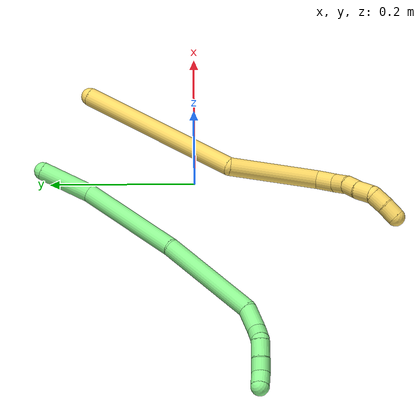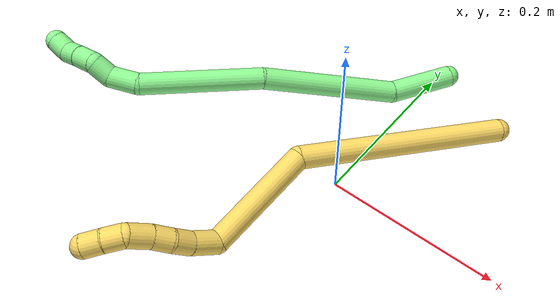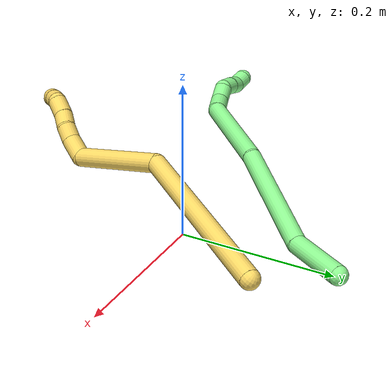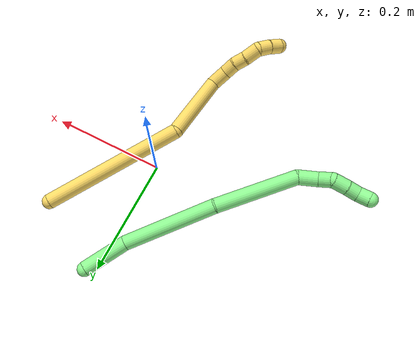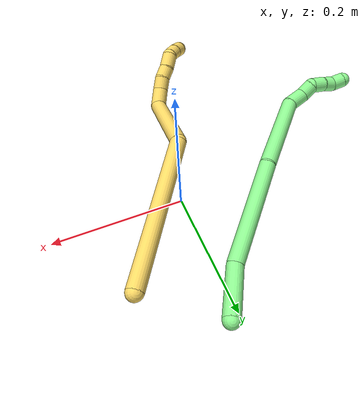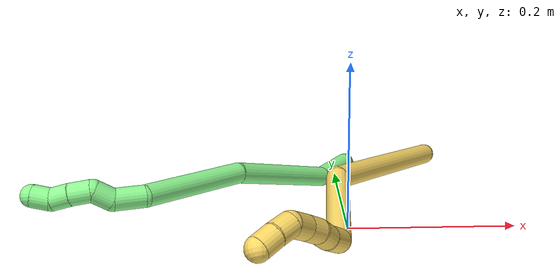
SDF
<sdf version="1.7">
 <world name="default">
  <model name="5">
   <static>0</static>
   <link name="5">
    <collision name="collision-cylinder-e_1_1_4">
     <pose>-0.06443 -0.095817 -0.022439 1.80084 -0.579678 -0.719556</pose>
     <geometry><cylinder><radius>0.0125</radius><length>0.23525</length></cylinder></geometry>
     <surface>
      <friction><ode><mu>1.16</mu><mu2>1.16</mu2><slip1>0</slip1><slip2>0</slip2></ode></friction>
      <contact><ode><kp>1e+06</kp><kd>1</kd><max_vel>0</max_vel><min_depth>0.001</min_depth></ode></contact>
     </surface>
    </collision>
    <visual name="visual-cylinder-e_1_1_4">
     <pose>-0.06443 -0.095817 -0.022439 1.80084 -0.579678 -0.719556</pose>
     <geometry><cylinder><radius>0.0125</radius><length>0.23525</length></cylinder></geometry>
     <material><ambient>1 0.858824 0.4 1</ambient></material>
    </visual>
    <collision name="collision-cylinder-e_2_4_5">
     <pose>-0.137033 -0.237979 -0.08465 2.28001 -0.133048 -0.287923</pose>
     <geometry><cylinder><radius>0.0125</radius><length>0.123231</length></cylinder></geometry>
     <surface>
      <friction><ode><mu>1.16</mu><mu2>1.16</mu2><slip1>0</slip1><slip2>0</slip2></ode></friction>
      <contact><ode><kp>1e+06</kp><kd>1</kd><max_vel>0</max_vel><min_depth>0.001</min_depth></ode></contact>
     </surface>
    </collision>
    <visual name="visual-cylinder-e_2_4_5">
     <pose>-0.137033 -0.237979 -0.08465 2.28001 -0.133048 -0.287923</pose>
     <geometry><cylinder><radius>0.0125</radius><length>0.123231</length></cylinder></geometry>
     <material><ambient>1 0.858824 0.4 1</ambient></material>
    </visual>
    <collision name="collision-cylinder-e_3_5_6">
     <pose>-0.150774 -0.298544 -0.123616 1.51426 -0.372625 -0.352566</pose>
     <geometry><cylinder><radius>0.0125</radius><length>0.030584</length></cylinder></geometry>
     <surface>
      <friction><ode><mu>1.16</mu><mu2>1.16</mu2><slip1>0</slip1><slip2>0</slip2></ode></friction>
      <contact><ode><kp>1e+06</kp><kd>1</kd><max_vel>0</max_vel><min_depth>0.001</min_depth></ode></contact>
     </surface>
    </collision>
    <visual name="visual-cylinder-e_3_5_6">
     <pose>-0.150774 -0.298544 -0.123616 1.51426 -0.372625 -0.352566</pose>
     <geometry><cylinder><radius>0.0125</radius><length>0.030584</length></cylinder></geometry>
     <material><ambient>1 0.858824 0.4 1</ambient></material>
    </visual>
    <collision name="collision-cylinder-e_4_6_7">
     <pose>-0.160149 -0.322586 -0.120317 1.32209 -0.359476 -0.280786</pose>
     <geometry><cylinder><radius>0.0125</radius><length>0.021653</length></cylinder></geometry>
     <surface>
      <friction><ode><mu>1.16</mu><mu2>1.16</mu2><slip1>0</slip1><slip2>0</slip2></ode></friction>
      <contact><ode><kp>1e+06</kp><kd>1</kd><max_vel>0</max_vel><min_depth>0.001</min_depth></ode></contact>
     </surface>
    </collision>
    <visual name="visual-cylinder-e_4_6_7">
     <pose>-0.160149 -0.322586 -0.120317 1.32209 -0.359476 -0.280786</pose>
     <geometry><cylinder><radius>0.0125</radius><length>0.021653</length></cylinder></geometry>
     <material><ambient>1 0.858824 0.4 1</ambient></material>
    </visual>
    <collision name="collision-cylinder-e_5_7_8">
     <pose>-0.169789 -0.34091 -0.115938 1.35261 -0.590043 -0.478444</pose>
     <geometry><cylinder><radius>0.0125</radius><length>0.02096</length></cylinder></geometry>
     <surface>
      <friction><ode><mu>1.16</mu><mu2>1.16</mu2><slip1>0</slip1><slip2>0</slip2></ode></friction>
      <contact><ode><kp>1e+06</kp><kd>1</kd><max_vel>0</max_vel><min_depth>0.001</min_depth></ode></contact>
     </surface>
    </collision>
    <visual name="visual-cylinder-e_5_7_8">
     <pose>-0.169789 -0.34091 -0.115938 1.35261 -0.590043 -0.478444</pose>
     <geometry><cylinder><radius>0.0125</radius><length>0.02096</length></cylinder></geometry>
     <material><ambient>1 0.858824 0.4 1</ambient></material>
    </visual>
    <collision name="collision-cylinder-e_6_8_9">
     <pose>-0.181556 -0.360934 -0.112975 1.4775 -0.473945 -0.433041</pose>
     <geometry><cylinder><radius>0.0125</radius><length>0.026013</length></cylinder></geometry>
     <surface>
      <friction><ode><mu>1.16</mu><mu2>1.16</mu2><slip1>0</slip1><slip2>0</slip2></ode></friction>
      <contact><ode><kp>1e+06</kp><kd>1</kd><max_vel>0</max_vel><min_depth>0.001</min_depth></ode></contact>
     </surface>
    </collision>
    <visual name="visual-cylinder-e_6_8_9">
     <pose>-0.181556 -0.360934 -0.112975 1.4775 -0.473945 -0.433041</pose>
     <geometry><cylinder><radius>0.0125</radius><length>0.026013</length></cylinder></geometry>
     <material><ambient>1 0.858824 0.4 1</ambient></material>
    </visual>
    <collision name="collision-cylinder-e_7_9_10">
     <pose>-0.195043 -0.378623 -0.116214 2.18163 -0.786971 -1.34635</pose>
     <geometry><cylinder><radius>0.0125</radius><length>0.021324</length></cylinder></geometry>
     <surface>
      <friction><ode><mu>1.16</mu><mu2>1.16</mu2><slip1>0</slip1><slip2>0</slip2></ode></friction>
      <contact><ode><kp>1e+06</kp><kd>1</kd><max_vel>0</max_vel><min_depth>0.001</min_depth></ode></contact>
     </surface>
    </collision>
    <visual name="visual-cylinder-e_7_9_10">
     <pose>-0.195043 -0.378623 -0.116214 2.18163 -0.786971 -1.34635</pose>
     <geometry><cylinder><radius>0.0125</radius><length>0.021324</length></cylinder></geometry>
     <material><ambient>1 0.858824 0.4 1</ambient></material>
    </visual>
    <collision name="collision-cylinder-e_8_10_2">
     <pose>-0.210353 -0.38985 -0.12546 2.34302 -0.832204 -1.61698</pose>
     <geometry><cylinder><radius>0.0125</radius><length>0.020986</length></cylinder></geometry>
     <surface>
      <friction><ode><mu>1.16</mu><mu2>1.16</mu2><slip1>0</slip1><slip2>0</slip2></ode></friction>
      <contact><ode><kp>1e+06</kp><kd>1</kd><max_vel>0</max_vel><min_depth>0.001</min_depth></ode></contact>
     </surface>
    </collision>
    <visual name="visual-cylinder-e_8_10_2">
     <pose>-0.210353 -0.38985 -0.12546 2.34302 -0.832204 -1.61698</pose>
     <geometry><cylinder><radius>0.0125</radius><length>0.020986</length></cylinder></geometry>
     <material><ambient>1 0.858824 0.4 1</ambient></material>
    </visual>
    <collision name="collision-sphere-2">
     <pose>-0.218112 -0.394911 -0.130389 0 -0 0</pose>
     <geometry><sphere><radius>0.0125</radius></sphere></geometry>
     <surface>
      <friction><ode><mu>1.16</mu><mu2>1.16</mu2><slip1>0</slip1><slip2>0</slip2></ode></friction>
      <contact><ode><kp>1e+06</kp><kd>1</kd><max_vel>0</max_vel><min_depth>0.001</min_depth></ode></contact>
     </surface>
    </collision>
    <visual name="visual-sphere-2">
     <pose>-0.218112 -0.394911 -0.130389 0 -0 0</pose>
     <geometry><sphere><radius>0.0125</radius></sphere></geometry>
     <material><ambient>1 0.858824 0.4 1</ambient></material>
    </visual>
    <collision name="collision-sphere-10">
     <pose>-0.202595 -0.384789 -0.120531 0 -0 0</pose>
     <geometry><sphere><radius>0.0125</radius></sphere></geometry>
     <surface>
      <friction><ode><mu>1.16</mu><mu2>1.16</mu2><slip1>0</slip1><slip2>0</slip2></ode></friction>
      <contact><ode><kp>1e+06</kp><kd>1</kd><max_vel>0</max_vel><min_depth>0.001</min_depth></ode></contact>
     </surface>
    </collision>
    <visual name="visual-sphere-10">
     <pose>-0.202595 -0.384789 -0.120531 0 -0 0</pose>
     <geometry><sphere><radius>0.0125</radius></sphere></geometry>
     <material><ambient>1 0.858824 0.4 1</ambient></material>
    </visual>
    <collision name="collision-sphere-9">
     <pose>-0.187492 -0.372457 -0.111897 0 -0 0</pose>
     <geometry><sphere><radius>0.0125</radius></sphere></geometry>
     <surface>
      <friction><ode><mu>1.16</mu><mu2>1.16</mu2><slip1>0</slip1><slip2>0</slip2></ode></friction>
      <contact><ode><kp>1e+06</kp><kd>1</kd><max_vel>0</max_vel><min_depth>0.001</min_depth></ode></contact>
     </surface>
    </collision>
    <visual name="visual-sphere-9">
     <pose>-0.187492 -0.372457 -0.111897 0 -0 0</pose>
     <geometry><sphere><radius>0.0125</radius></sphere></geometry>
     <material><ambient>1 0.858824 0.4 1</ambient></material>
    </visual>
    <collision name="collision-sphere-4">
     <pose>-0.128859 -0.191634 -0.044878 0 -0 0</pose>
     <geometry><sphere><radius>0.0125</radius></sphere></geometry>
     <surface>
      <friction><ode><mu>1.16</mu><mu2>1.16</mu2><slip1>0</slip1><slip2>0</slip2></ode></friction>
      <contact><ode><kp>1e+06</kp><kd>1</kd><max_vel>0</max_vel><min_depth>0.001</min_depth></ode></contact>
     </surface>
    </collision>
    <visual name="visual-sphere-4">
     <pose>-0.128859 -0.191634 -0.044878 0 -0 0</pose>
     <geometry><sphere><radius>0.0125</radius></sphere></geometry>
     <material><ambient>1 0.858824 0.4 1</ambient></material>
    </visual>
    <collision name="collision-sphere-1">
     <geometry><sphere><radius>0.0125</radius></sphere></geometry>
     <surface>
      <friction><ode><mu>1.16</mu><mu2>1.16</mu2><slip1>0</slip1><slip2>0</slip2></ode></friction>
      <contact><ode><kp>1e+06</kp><kd>1</kd><max_vel>0</max_vel><min_depth>0.001</min_depth></ode></contact>
     </surface>
    </collision>
    <visual name="visual-sphere-1">
     <geometry><sphere><radius>0.0125</radius></sphere></geometry>
     <material><ambient>1 0.858824 0.4 1</ambient></material>
    </visual>
    <collision name="collision-sphere-8">
     <pose>-0.17562 -0.349412 -0.114053 0 -0 0</pose>
     <geometry><sphere><radius>0.0125</radius></sphere></geometry>
     <surface>
      <friction><ode><mu>1.16</mu><mu2>1.16</mu2><slip1>0</slip1><slip2>0</slip2></ode></friction>
      <contact><ode><kp>1e+06</kp><kd>1</kd><max_vel>0</max_vel><min_depth>0.001</min_depth></ode></contact>
     </surface>
    </collision>
    <visual name="visual-sphere-8">
     <pose>-0.17562 -0.349412 -0.114053 0 -0 0</pose>
     <geometry><sphere><radius>0.0125</radius></sphere></geometry>
     <material><ambient>1 0.858824 0.4 1</ambient></material>
    </visual>
    <collision name="collision-sphere-5">
     <pose>-0.145206 -0.284324 -0.124421 0 -0 0</pose>
     <geometry><sphere><radius>0.0125</radius></sphere></geometry>
     <surface>
      <friction><ode><mu>1.16</mu><mu2>1.16</mu2><slip1>0</slip1><slip2>0</slip2></ode></friction>
      <contact><ode><kp>1e+06</kp><kd>1</kd><max_vel>0</max_vel><min_depth>0.001</min_depth></ode></contact>
     </surface>
    </collision>
    <visual name="visual-sphere-5">
     <pose>-0.145206 -0.284324 -0.124421 0 -0 0</pose>
     <geometry><sphere><radius>0.0125</radius></sphere></geometry>
     <material><ambient>1 0.858824 0.4 1</ambient></material>
    </visual>
    <collision name="collision-sphere-6">
     <pose>-0.156341 -0.312764 -0.122812 0 -0 0</pose>
     <geometry><sphere><radius>0.0125</radius></sphere></geometry>
     <surface>
      <friction><ode><mu>1.16</mu><mu2>1.16</mu2><slip1>0</slip1><slip2>0</slip2></ode></friction>
      <contact><ode><kp>1e+06</kp><kd>1</kd><max_vel>0</max_vel><min_depth>0.001</min_depth></ode></contact>
     </surface>
    </collision>
    <visual name="visual-sphere-6">
     <pose>-0.156341 -0.312764 -0.122812 0 -0 0</pose>
     <geometry><sphere><radius>0.0125</radius></sphere></geometry>
     <material><ambient>1 0.858824 0.4 1</ambient></material>
    </visual>
    <collision name="collision-sphere-7">
     <pose>-0.163958 -0.332409 -0.117823 0 -0 0</pose>
     <geometry><sphere><radius>0.0125</radius></sphere></geometry>
     <surface>
      <friction><ode><mu>1.16</mu><mu2>1.16</mu2><slip1>0</slip1><slip2>0</slip2></ode></friction>
      <contact><ode><kp>1e+06</kp><kd>1</kd><max_vel>0</max_vel><min_depth>0.001</min_depth></ode></contact>
     </surface>
    </collision>
    <visual name="visual-sphere-7">
     <pose>-0.163958 -0.332409 -0.117823 0 -0 0</pose>
     <geometry><sphere><radius>0.0125</radius></sphere></geometry>
     <material><ambient>1 0.858824 0.4 1</ambient></material>
    </visual>
    <inertial>
     <pose>-0.113956 -0.201545 -0.065152 0 -0 0</pose>
     <mass>0.5</mass>
     <inertia>
      <ixx>0.000178</ixx>
      <ixy>0</ixy>
      <ixz>0</ixz>
      <iyy>-0.000579</iyy>
      <iyz>0</iyz>
      <izz>0.001639</izz>
     </inertia>
    </inertial>
   </link>
   <pose>0.11486 0.144104 0.045723 -0.54005 -0.186723 0.029688</pose>
  </model>
  <model name="13">
   <static>0</static>
   <link name="13">
    <collision name="collision-cylinder-e_1_1_4">
     <pose>-0.019392 -0.027317 -0.017694 2.14557 -0.537335 -0.937456</pose>
     <geometry><cylinder><radius>0.0125</radius><length>0.075771</length></cylinder></geometry>
     <surface>
      <friction><ode><mu>1.16</mu><mu2>1.16</mu2><slip1>0</slip1><slip2>0</slip2></ode></friction>
      <contact><ode><kp>1e+06</kp><kd>1</kd><max_vel>0</max_vel><min_depth>0.001</min_depth></ode></contact>
     </surface>
    </collision>
    <visual name="visual-cylinder-e_1_1_4">
     <pose>-0.019392 -0.027317 -0.017694 2.14557 -0.537335 -0.937456</pose>
     <geometry><cylinder><radius>0.0125</radius><length>0.075771</length></cylinder></geometry>
     <material><ambient>0.564706 0.984314 0.572549 1</ambient></material>
    </visual>
    <collision name="collision-cylinder-e_2_4_5">
     <pose>-0.0958 -0.109204 -0.050004 1.83251 -0.790004 -0.995344</pose>
     <geometry><cylinder><radius>0.0125</radius><length>0.160531</length></cylinder></geometry>
     <surface>
      <friction><ode><mu>1.16</mu><mu2>1.16</mu2><slip1>0</slip1><slip2>0</slip2></ode></friction>
      <contact><ode><kp>1e+06</kp><kd>1</kd><max_vel>0</max_vel><min_depth>0.001</min_depth></ode></contact>
     </surface>
    </collision>
    <visual name="visual-cylinder-e_2_4_5">
     <pose>-0.0958 -0.109204 -0.050004 1.83251 -0.790004 -0.995344</pose>
     <geometry><cylinder><radius>0.0125</radius><length>0.160531</length></cylinder></geometry>
     <material><ambient>0.564706 0.984314 0.572549 1</ambient></material>
    </visual>
    <collision name="collision-cylinder-e_3_5_6">
     <pose>-0.202824 -0.205415 -0.091085 2.13693 -0.79213 -1.30128</pose>
     <geometry><cylinder><radius>0.0125</radius><length>0.140497</length></cylinder></geometry>
     <surface>
      <friction><ode><mu>1.16</mu><mu2>1.16</mu2><slip1>0</slip1><slip2>0</slip2></ode></friction>
      <contact><ode><kp>1e+06</kp><kd>1</kd><max_vel>0</max_vel><min_depth>0.001</min_depth></ode></contact>
     </surface>
    </collision>
    <visual name="visual-cylinder-e_3_5_6">
     <pose>-0.202824 -0.205415 -0.091085 2.13693 -0.79213 -1.30128</pose>
     <geometry><cylinder><radius>0.0125</radius><length>0.140497</length></cylinder></geometry>
     <material><ambient>0.564706 0.984314 0.572549 1</ambient></material>
    </visual>
    <collision name="collision-cylinder-e_4_6_7">
     <pose>-0.269123 -0.251192 -0.121808 2.37087 -1.22128 -2.09102</pose>
     <geometry><cylinder><radius>0.0125</radius><length>0.034682</length></cylinder></geometry>
     <surface>
      <friction><ode><mu>1.16</mu><mu2>1.16</mu2><slip1>0</slip1><slip2>0</slip2></ode></friction>
      <contact><ode><kp>1e+06</kp><kd>1</kd><max_vel>0</max_vel><min_depth>0.001</min_depth></ode></contact>
     </surface>
    </collision>
    <visual name="visual-cylinder-e_4_6_7">
     <pose>-0.269123 -0.251192 -0.121808 2.37087 -1.22128 -2.09102</pose>
     <geometry><cylinder><radius>0.0125</radius><length>0.034682</length></cylinder></geometry>
     <material><ambient>0.564706 0.984314 0.572549 1</ambient></material>
    </visual>
    <collision name="collision-cylinder-e_5_7_8">
     <pose>-0.295861 -0.259233 -0.122836 0.87926 -1.11909 -0.57294</pose>
     <geometry><cylinder><radius>0.0125</radius><length>0.023221</length></cylinder></geometry>
     <surface>
      <friction><ode><mu>1.16</mu><mu2>1.16</mu2><slip1>0</slip1><slip2>0</slip2></ode></friction>
      <contact><ode><kp>1e+06</kp><kd>1</kd><max_vel>0</max_vel><min_depth>0.001</min_depth></ode></contact>
     </surface>
    </collision>
    <visual name="visual-cylinder-e_5_7_8">
     <pose>-0.295861 -0.259233 -0.122836 0.87926 -1.11909 -0.57294</pose>
     <geometry><cylinder><radius>0.0125</radius><length>0.023221</length></cylinder></geometry>
     <material><ambient>0.564706 0.984314 0.572549 1</ambient></material>
    </visual>
    <collision name="collision-cylinder-e_6_8_9">
     <pose>-0.317836 -0.261246 -0.122463 -2.55729 -1.28182 2.3751</pose>
     <geometry><cylinder><radius>0.0125</radius><length>0.024055</length></cylinder></geometry>
     <surface>
      <friction><ode><mu>1.16</mu><mu2>1.16</mu2><slip1>0</slip1><slip2>0</slip2></ode></friction>
      <contact><ode><kp>1e+06</kp><kd>1</kd><max_vel>0</max_vel><min_depth>0.001</min_depth></ode></contact>
     </surface>
    </collision>
    <visual name="visual-cylinder-e_6_8_9">
     <pose>-0.317836 -0.261246 -0.122463 -2.55729 -1.28182 2.3751</pose>
     <geometry><cylinder><radius>0.0125</radius><length>0.024055</length></cylinder></geometry>
     <material><ambient>0.564706 0.984314 0.572549 1</ambient></material>
    </visual>
    <collision name="collision-cylinder-e_7_9_10">
     <pose>-0.338871 -0.257201 -0.128419 -2.53371 -1.19299 2.27612</pose>
     <geometry><cylinder><radius>0.0125</radius><length>0.020455</length></cylinder></geometry>
     <surface>
      <friction><ode><mu>1.16</mu><mu2>1.16</mu2><slip1>0</slip1><slip2>0</slip2></ode></friction>
      <contact><ode><kp>1e+06</kp><kd>1</kd><max_vel>0</max_vel><min_depth>0.001</min_depth></ode></contact>
     </surface>
    </collision>
    <visual name="visual-cylinder-e_7_9_10">
     <pose>-0.338871 -0.257201 -0.128419 -2.53371 -1.19299 2.27612</pose>
     <geometry><cylinder><radius>0.0125</radius><length>0.020455</length></cylinder></geometry>
     <material><ambient>0.564706 0.984314 0.572549 1</ambient></material>
    </visual>
    <collision name="collision-cylinder-e_8_10_2">
     <pose>-0.358692 -0.254537 -0.130337 -0.407454 -1.44702 0.360995</pose>
     <geometry><cylinder><radius>0.0125</radius><length>0.020788</length></cylinder></geometry>
     <surface>
      <friction><ode><mu>1.16</mu><mu2>1.16</mu2><slip1>0</slip1><slip2>0</slip2></ode></friction>
      <contact><ode><kp>1e+06</kp><kd>1</kd><max_vel>0</max_vel><min_depth>0.001</min_depth></ode></contact>
     </surface>
    </collision>
    <visual name="visual-cylinder-e_8_10_2">
     <pose>-0.358692 -0.254537 -0.130337 -0.407454 -1.44702 0.360995</pose>
     <geometry><cylinder><radius>0.0125</radius><length>0.020788</length></cylinder></geometry>
     <material><ambient>0.564706 0.984314 0.572549 1</ambient></material>
    </visual>
    <collision name="collision-sphere-2">
     <pose>-0.369006 -0.254029 -0.129159 0 -0 0</pose>
     <geometry><sphere><radius>0.0125</radius></sphere></geometry>
     <surface>
      <friction><ode><mu>1.16</mu><mu2>1.16</mu2><slip1>0</slip1><slip2>0</slip2></ode></friction>
      <contact><ode><kp>1e+06</kp><kd>1</kd><max_vel>0</max_vel><min_depth>0.001</min_depth></ode></contact>
     </surface>
    </collision>
    <visual name="visual-sphere-2">
     <pose>-0.369006 -0.254029 -0.129159 0 -0 0</pose>
     <geometry><sphere><radius>0.0125</radius></sphere></geometry>
     <material><ambient>0.564706 0.984314 0.572549 1</ambient></material>
    </visual>
    <collision name="collision-sphere-10">
     <pose>-0.348377 -0.255046 -0.131516 0 -0 0</pose>
     <geometry><sphere><radius>0.0125</radius></sphere></geometry>
     <surface>
      <friction><ode><mu>1.16</mu><mu2>1.16</mu2><slip1>0</slip1><slip2>0</slip2></ode></friction>
      <contact><ode><kp>1e+06</kp><kd>1</kd><max_vel>0</max_vel><min_depth>0.001</min_depth></ode></contact>
     </surface>
    </collision>
    <visual name="visual-sphere-10">
     <pose>-0.348377 -0.255046 -0.131516 0 -0 0</pose>
     <geometry><sphere><radius>0.0125</radius></sphere></geometry>
     <material><ambient>0.564706 0.984314 0.572549 1</ambient></material>
    </visual>
    <collision name="collision-sphere-9">
     <pose>-0.329365 -0.259355 -0.125322 0 -0 0</pose>
     <geometry><sphere><radius>0.0125</radius></sphere></geometry>
     <surface>
      <friction><ode><mu>1.16</mu><mu2>1.16</mu2><slip1>0</slip1><slip2>0</slip2></ode></friction>
      <contact><ode><kp>1e+06</kp><kd>1</kd><max_vel>0</max_vel><min_depth>0.001</min_depth></ode></contact>
     </surface>
    </collision>
    <visual name="visual-sphere-9">
     <pose>-0.329365 -0.259355 -0.125322 0 -0 0</pose>
     <geometry><sphere><radius>0.0125</radius></sphere></geometry>
     <material><ambient>0.564706 0.984314 0.572549 1</ambient></material>
    </visual>
    <collision name="collision-sphere-4">
     <pose>-0.038783 -0.054634 -0.035387 0 -0 0</pose>
     <geometry><sphere><radius>0.0125</radius></sphere></geometry>
     <surface>
      <friction><ode><mu>1.16</mu><mu2>1.16</mu2><slip1>0</slip1><slip2>0</slip2></ode></friction>
      <contact><ode><kp>1e+06</kp><kd>1</kd><max_vel>0</max_vel><min_depth>0.001</min_depth></ode></contact>
     </surface>
    </collision>
    <visual name="visual-sphere-4">
     <pose>-0.038783 -0.054634 -0.035387 0 -0 0</pose>
     <geometry><sphere><radius>0.0125</radius></sphere></geometry>
     <material><ambient>0.564706 0.984314 0.572549 1</ambient></material>
    </visual>
    <collision name="collision-sphere-1">
     <geometry><sphere><radius>0.0125</radius></sphere></geometry>
     <surface>
      <friction><ode><mu>1.16</mu><mu2>1.16</mu2><slip1>0</slip1><slip2>0</slip2></ode></friction>
      <contact><ode><kp>1e+06</kp><kd>1</kd><max_vel>0</max_vel><min_depth>0.001</min_depth></ode></contact>
     </surface>
    </collision>
    <visual name="visual-sphere-1">
     <geometry><sphere><radius>0.0125</radius></sphere></geometry>
     <material><ambient>0.564706 0.984314 0.572549 1</ambient></material>
    </visual>
    <collision name="collision-sphere-8">
     <pose>-0.306308 -0.263137 -0.119604 0 -0 0</pose>
     <geometry><sphere><radius>0.0125</radius></sphere></geometry>
     <surface>
      <friction><ode><mu>1.16</mu><mu2>1.16</mu2><slip1>0</slip1><slip2>0</slip2></ode></friction>
      <contact><ode><kp>1e+06</kp><kd>1</kd><max_vel>0</max_vel><min_depth>0.001</min_depth></ode></contact>
     </surface>
    </collision>
    <visual name="visual-sphere-8">
     <pose>-0.306308 -0.263137 -0.119604 0 -0 0</pose>
     <geometry><sphere><radius>0.0125</radius></sphere></geometry>
     <material><ambient>0.564706 0.984314 0.572549 1</ambient></material>
    </visual>
    <collision name="collision-sphere-5">
     <pose>-0.152817 -0.163775 -0.064621 0 -0 0</pose>
     <geometry><sphere><radius>0.0125</radius></sphere></geometry>
     <surface>
      <friction><ode><mu>1.16</mu><mu2>1.16</mu2><slip1>0</slip1><slip2>0</slip2></ode></friction>
      <contact><ode><kp>1e+06</kp><kd>1</kd><max_vel>0</max_vel><min_depth>0.001</min_depth></ode></contact>
     </surface>
    </collision>
    <visual name="visual-sphere-5">
     <pose>-0.152817 -0.163775 -0.064621 0 -0 0</pose>
     <geometry><sphere><radius>0.0125</radius></sphere></geometry>
     <material><ambient>0.564706 0.984314 0.572549 1</ambient></material>
    </visual>
    <collision name="collision-sphere-6">
     <pose>-0.25283 -0.247055 -0.117548 0 -0 0</pose>
     <geometry><sphere><radius>0.0125</radius></sphere></geometry>
     <surface>
      <friction><ode><mu>1.16</mu><mu2>1.16</mu2><slip1>0</slip1><slip2>0</slip2></ode></friction>
      <contact><ode><kp>1e+06</kp><kd>1</kd><max_vel>0</max_vel><min_depth>0.001</min_depth></ode></contact>
     </surface>
    </collision>
    <visual name="visual-sphere-6">
     <pose>-0.25283 -0.247055 -0.117548 0 -0 0</pose>
     <geometry><sphere><radius>0.0125</radius></sphere></geometry>
     <material><ambient>0.564706 0.984314 0.572549 1</ambient></material>
    </visual>
    <collision name="collision-sphere-7">
     <pose>-0.285415 -0.255329 -0.126069 0 -0 0</pose>
     <geometry><sphere><radius>0.0125</radius></sphere></geometry>
     <surface>
      <friction><ode><mu>1.16</mu><mu2>1.16</mu2><slip1>0</slip1><slip2>0</slip2></ode></friction>
      <contact><ode><kp>1e+06</kp><kd>1</kd><max_vel>0</max_vel><min_depth>0.001</min_depth></ode></contact>
     </surface>
    </collision>
    <visual name="visual-sphere-7">
     <pose>-0.285415 -0.255329 -0.126069 0 -0 0</pose>
     <geometry><sphere><radius>0.0125</radius></sphere></geometry>
     <material><ambient>0.564706 0.984314 0.572549 1</ambient></material>
    </visual>
    <inertial>
     <pose>-0.167164 -0.160058 -0.075048 0 -0 0</pose>
     <mass>0.5</mass>
     <inertia>
      <ixx>-0.000226</ixx>
      <ixy>0</ixy>
      <ixz>0</ixz>
      <iyy>-0.000147</iyy>
      <iyz>0</iyz>
      <izz>0.000847</izz>
     </inertia>
    </inertial>
   </link>
   <pose>0.014996 0.209321 0.01364 -0.539754 0.120923 0.022182</pose>
  </model>
 </world>
</sdf>
